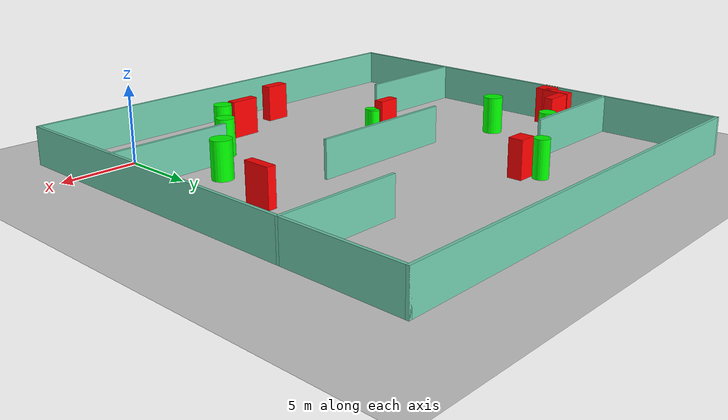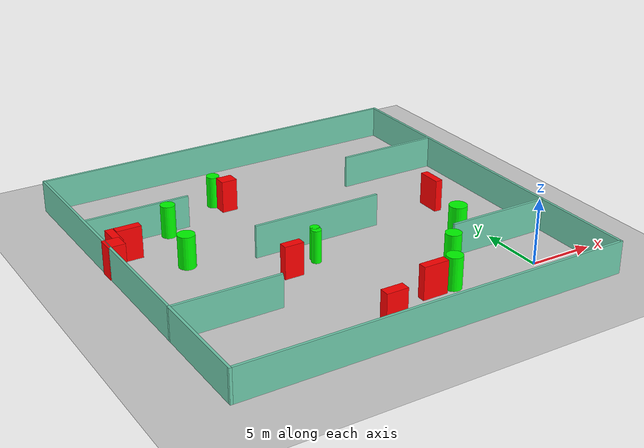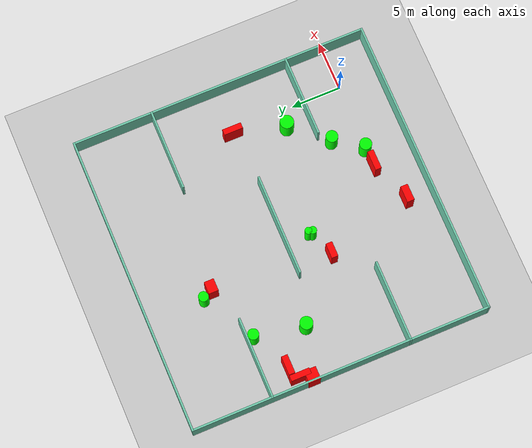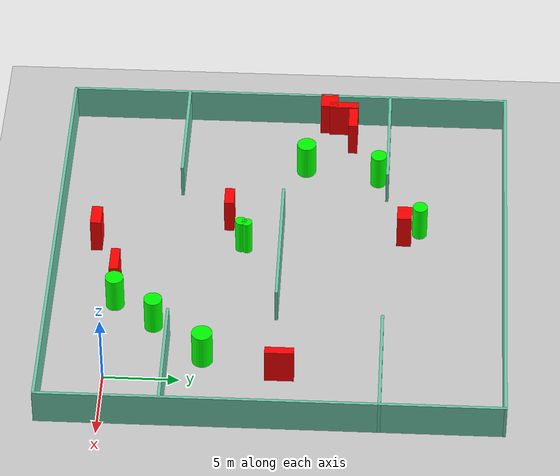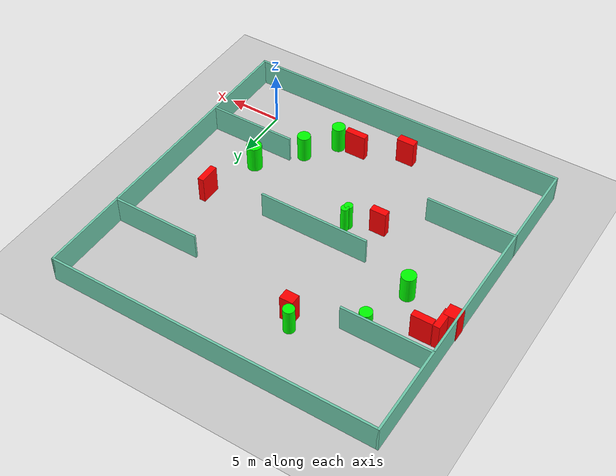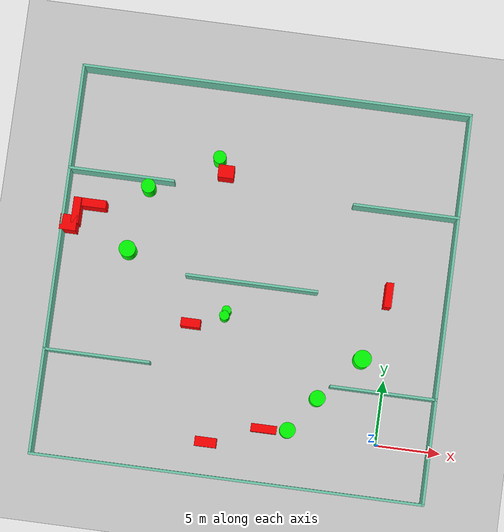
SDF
<sdf version="1.7">
 <world name="default">
  <light name="sun" type="directional">
   <pose>0 0 10 0 -0 0</pose>
   <diffuse>0.8 0.8 0.8 1</diffuse>
   <specular>0.2 0.2 0.2 1</specular>
   <attenuation>
    <range>1000</range>
    <constant>0.9</constant>
    <linear>0.01</linear>
    <quadratic>0.001</quadratic>
   </attenuation>
   <direction>-0.5 0.1 -0.9</direction>
   <spot><inner_angle>0</inner_angle><outer_angle>0</outer_angle><falloff>0</falloff></spot>
  </light>
  <model name="ground_plane">
   <static>1</static>
   <link name="link">
    <collision name="collision">
     <geometry><plane><normal>0 0 1</normal><size>100 100</size></plane></geometry>
     <surface>
      <contact><collide_bitmask>65535</collide_bitmask></contact>
      <friction><ode><mu>100</mu><mu2>50</mu2></ode></friction>
     </surface>
    </collision>
    <visual name="visual">
     <cast_shadows>0</cast_shadows>
     <geometry><plane><normal>0 0 1</normal><size>100 100</size></plane></geometry>
     <material>
      <script><uri>file://media/materials/scripts/gazebo.material</uri><name>Gazebo/Grey</name></script>
     </material>
    </visual>
   </link>
  </model>
  <gravity>0 0 -9.8</gravity>
  <magnetic_field>6e-06 2.3e-05 -4.2e-05</magnetic_field>
  <atmosphere type="adiabatic"/>
  <physics type="ode">
   <max_step_size>0.001</max_step_size>
   <real_time_factor>1</real_time_factor>
   <real_time_update_rate>1000</real_time_update_rate>
  </physics>
  <scene><ambient>0.4 0.4 0.4 1</ambient><background>0.7 0.7 0.7 1</background><shadows>1</shadows></scene>
  <spherical_coordinates>
   <surface_model>EARTH_WGS84</surface_model>
   <latitude_deg>0</latitude_deg>
   <longitude_deg>0</longitude_deg>
   <elevation>0</elevation>
   <heading_deg>0</heading_deg>
  </spherical_coordinates>
  <model name="my_base_walls">
   <link name="Wall_10">
    <collision name="Wall_10_Collision">
     <geometry><box><size>8.2 0.2 2.5</size></box></geometry>
     <pose>0 0 1.25 0 -0 0</pose>
    </collision>
    <visual name="Wall_10_Visual">
     <pose>0 0 1.25 0 -0 0</pose>
     <geometry><box><size>8.2 0.2 2.5</size></box></geometry>
     <material>
      <script><uri>file://media/materials/scripts/gazebo.material</uri><name>Gazebo/Grey</name></script>
      <ambient>0.435294 0.796078 0.67451 1</ambient>
     </material>
     <meta><layer>0</layer></meta>
    </visual>
    <pose>-11 -7 0 0 -0 0</pose>
   </link>
   <link name="Wall_12">
    <collision name="Wall_12_Collision">
     <geometry><box><size>8.2 0.2 2.5</size></box></geometry>
     <pose>0 0 1.25 0 -0 0</pose>
    </collision>
    <visual name="Wall_12_Visual">
     <pose>0 0 1.25 0 -0 0</pose>
     <geometry><box><size>8.2 0.2 2.5</size></box></geometry>
     <material>
      <script><uri>file://media/materials/scripts/gazebo.material</uri><name>Gazebo/Grey</name></script>
      <ambient>0.435294 0.796078 0.67451 1</ambient>
     </material>
     <meta><layer>0</layer></meta>
    </visual>
    <pose>-11 7 0 0 -0 0</pose>
   </link>
   <link name="Wall_14">
    <collision name="Wall_14_Collision">
     <geometry><box><size>8.2 0.2 2.5</size></box></geometry>
     <pose>0 0 1.25 0 -0 0</pose>
    </collision>
    <visual name="Wall_14_Visual">
     <pose>0 0 1.25 0 -0 0</pose>
     <geometry><box><size>8.2 0.2 2.5</size></box></geometry>
     <material>
      <script><uri>file://media/materials/scripts/gazebo.material</uri><name>Gazebo/Grey</name></script>
      <ambient>0.435294 0.796078 0.67451 1</ambient>
     </material>
     <meta><layer>0</layer></meta>
    </visual>
    <pose>11 7 0 0 -0 3.14159</pose>
   </link>
   <link name="Wall_16">
    <collision name="Wall_16_Collision">
     <geometry><box><size>10.2 0.2 2.5</size></box></geometry>
     <pose>0 0 1.25 0 -0 0</pose>
    </collision>
    <visual name="Wall_16_Visual">
     <pose>0 0 1.25 0 -0 0</pose>
     <geometry><box><size>10.2 0.2 2.5</size></box></geometry>
     <material>
      <script><uri>file://media/materials/scripts/gazebo.material</uri><name>Gazebo/Grey</name></script>
      <ambient>0.435294 0.796078 0.67451 1</ambient>
     </material>
     <meta><layer>0</layer></meta>
    </visual>
    <pose>0 0 0 0 -0 3.14159</pose>
   </link>
   <link name="Wall_2">
    <collision name="Wall_2_Collision">
     <geometry><box><size>30.2 0.2 2.5</size></box></geometry>
     <pose>0 0 1.25 0 -0 0</pose>
    </collision>
    <visual name="Wall_2_Visual">
     <pose>0 0 1.25 0 -0 0</pose>
     <geometry><box><size>30.2 0.2 2.5</size></box></geometry>
     <material>
      <script><uri>file://media/materials/scripts/gazebo.material</uri><name>Gazebo/Grey</name></script>
      <ambient>0.435294 0.796078 0.67451 1</ambient>
     </material>
     <meta><layer>0</layer></meta>
    </visual>
    <pose>0 -15 0 0 -0 3.14159</pose>
   </link>
   <link name="Wall_3">
    <collision name="Wall_3_Collision">
     <geometry><box><size>30.2 0.2 2.5</size></box></geometry>
     <pose>0 0 1.25 0 -0 0</pose>
    </collision>
    <visual name="Wall_3_Visual">
     <pose>0 0 1.25 0 -0 0</pose>
     <geometry><box><size>30.2 0.2 2.5</size></box></geometry>
     <material>
      <script><uri>file://media/materials/scripts/gazebo.material</uri><name>Gazebo/Grey</name></script>
      <ambient>0.435294 0.796078 0.67451 1</ambient>
     </material>
     <meta><layer>0</layer></meta>
    </visual>
    <pose>-15 0 0 0 -0 1.5708</pose>
   </link>
   <link name="Wall_4">
    <collision name="Wall_4_Collision">
     <geometry><box><size>30.2 0.2 2.5</size></box></geometry>
     <pose>0 0 1.25 0 -0 0</pose>
    </collision>
    <visual name="Wall_4_Visual">
     <pose>0 0 1.25 0 -0 0</pose>
     <geometry><box><size>30.2 0.2 2.5</size></box></geometry>
     <material>
      <script><uri>file://media/materials/scripts/gazebo.material</uri><name>Gazebo/Grey</name></script>
      <ambient>0.435294 0.796078 0.67451 1</ambient>
     </material>
     <meta><layer>0</layer></meta>
    </visual>
    <pose>0 15 0 0 -0 0</pose>
   </link>
   <link name="Wall_6">
    <collision name="Wall_6_Collision">
     <geometry><box><size>30.2 0.2 2.5</size></box></geometry>
     <pose>0 0 1.25 0 -0 0</pose>
    </collision>
    <visual name="Wall_6_Visual">
     <pose>0 0 1.25 0 -0 0</pose>
     <geometry><box><size>30.2 0.2 2.5</size></box></geometry>
     <material>
      <script><uri>file://media/materials/scripts/gazebo.material</uri><name>Gazebo/Grey</name></script>
      <ambient>0.435294 0.796078 0.67451 1</ambient>
     </material>
     <meta><layer>0</layer></meta>
    </visual>
    <pose>15 0 0 0 -0 1.5708</pose>
   </link>
   <link name="Wall_8">
    <collision name="Wall_8_Collision">
     <geometry><box><size>8.2 0.2 2.5</size></box></geometry>
     <pose>0 0 1.25 0 -0 0</pose>
    </collision>
    <visual name="Wall_8_Visual">
     <pose>0 0 1.25 0 -0 0</pose>
     <geometry><box><size>8.2 0.2 2.5</size></box></geometry>
     <material>
      <script><uri>file://media/materials/scripts/gazebo.material</uri><name>Gazebo/Grey</name></script>
      <ambient>0.435294 0.796078 0.67451 1</ambient>
     </material>
     <meta><layer>0</layer></meta>
    </visual>
    <pose>11 -7 0 0 -0 3.14159</pose>
   </link>
   <static>1</static>
   <pose>-11 11 0 0 -0 0</pose>
  </model>
  <model name="cylinder1">
   <static>1</static>
   <link name="link">
    <inertial>
     <mass>1</mass>
     <inertia><ixx>0.5</ixx><ixy>0</ixy><ixz>0</ixz><iyy>0.5</iyy><iyz>0</iyz><izz>1</izz></inertia>
    </inertial>
    <collision name="collision">
     <geometry><cylinder><radius>0.5004097971121233</radius><length>2.5</length></cylinder></geometry>
    </collision>
    <visual name="visual">
     <geometry><cylinder><radius>0.5004097971121233</radius><length>2.5</length></cylinder></geometry>
     <material>
      <ambient>0 1 0 1</ambient>
      <diffuse>0 1 0 1</diffuse>
      <specular>0.1 0.1 0.1 1</specular>
      <emissive>0 0 0 0</emissive>
     </material>
    </visual>
   </link>
   <pose>-14.696283538533532 20.280794465425444 1.25 0 0 0</pose>
  </model>
  <model name="cylinder2">
   <static>1</static>
   <link name="link">
    <inertial>
     <mass>1</mass>
     <inertia><ixx>0.5</ixx><ixy>0</ixy><ixz>0</ixz><iyy>0.5</iyy><iyz>0</iyz><izz>1</izz></inertia>
    </inertial>
    <collision name="collision">
     <geometry><cylinder><radius>0.5498464560483503</radius><length>2.5</length></cylinder></geometry>
    </collision>
    <visual name="visual">
     <geometry><cylinder><radius>0.5498464560483503</radius><length>2.5</length></cylinder></geometry>
     <material>
      <ambient>0 1 0 1</ambient>
      <diffuse>0 1 0 1</diffuse>
      <specular>0.1 0.1 0.1 1</specular>
      <emissive>0 0 0 0</emissive>
     </material>
    </visual>
   </link>
   <pose>-19.831765790476354 17.368916311953168 1.25 0 0 0</pose>
  </model>
  <model name="cylinder3">
   <static>1</static>
   <link name="link">
    <inertial>
     <mass>1</mass>
     <inertia><ixx>0.5</ixx><ixy>0</ixy><ixz>0</ixz><iyy>0.5</iyy><iyz>0</iyz><izz>1</izz></inertia>
    </inertial>
    <collision name="collision">
     <geometry><cylinder><radius>0.6080201490339894</radius><length>2.5</length></cylinder></geometry>
    </collision>
    <visual name="visual">
     <geometry><cylinder><radius>0.6080201490339894</radius><length>2.5</length></cylinder></geometry>
     <material>
      <ambient>0 1 0 1</ambient>
      <diffuse>0 1 0 1</diffuse>
      <specular>0.1 0.1 0.1 1</specular>
      <emissive>0 0 0 0</emissive>
     </material>
    </visual>
   </link>
   <pose>-6.861584810828994 0.26967560718890793 1.25 0 0 0</pose>
  </model>
  <model name="cylinder4">
   <static>1</static>
   <link name="link">
    <inertial>
     <mass>1</mass>
     <inertia><ixx>0.5</ixx><ixy>0</ixy><ixz>0</ixz><iyy>0.5</iyy><iyz>0</iyz><izz>1</izz></inertia>
    </inertial>
    <collision name="collision">
     <geometry><cylinder><radius>0.6460852037391813</radius><length>2.5</length></cylinder></geometry>
    </collision>
    <visual name="visual">
     <geometry><cylinder><radius>0.6460852037391813</radius><length>2.5</length></cylinder></geometry>
     <material>
      <ambient>0 1 0 1</ambient>
      <diffuse>0 1 0 1</diffuse>
      <specular>0.1 0.1 0.1 1</specular>
      <emissive>0 0 0 0</emissive>
     </material>
    </visual>
   </link>
   <pose>-20.769097517664303 12.374495764421283 1.25 0 0 0</pose>
  </model>
  <model name="cylinder5">
   <static>1</static>
   <link name="link">
    <inertial>
     <mass>1</mass>
     <inertia><ixx>0.5</ixx><ixy>0</ixy><ixz>0</ixz><iyy>0.5</iyy><iyz>0</iyz><izz>1</izz></inertia>
    </inertial>
    <collision name="collision">
     <geometry><cylinder><radius>0.6028342076372462</radius><length>2.5</length></cylinder></geometry>
    </collision>
    <visual name="visual">
     <geometry><cylinder><radius>0.6028342076372462</radius><length>2.5</length></cylinder></geometry>
     <material>
      <ambient>0 1 0 1</ambient>
      <diffuse>0 1 0 1</diffuse>
      <specular>0.1 0.1 0.1 1</specular>
      <emissive>0 0 0 0</emissive>
     </material>
    </visual>
   </link>
   <pose>-4.918032627253515 2.9634415665316105 1.25 0 0 0</pose>
  </model>
  <model name="cylinder6">
   <static>1</static>
   <link name="link">
    <inertial>
     <mass>1</mass>
     <inertia><ixx>0.5</ixx><ixy>0</ixy><ixz>0</ixz><iyy>0.5</iyy><iyz>0</iyz><izz>1</izz></inertia>
    </inertial>
    <collision name="collision">
     <geometry><cylinder><radius>0.6844340089192207</radius><length>2.5</length></cylinder></geometry>
    </collision>
    <visual name="visual">
     <geometry><cylinder><radius>0.6844340089192207</radius><length>2.5</length></cylinder></geometry>
     <material>
      <ambient>0 1 0 1</ambient>
      <diffuse>0 1 0 1</diffuse>
      <specular>0.1 0.1 0.1 1</specular>
      <emissive>0 0 0 0</emissive>
     </material>
    </visual>
   </link>
   <pose>-1.9025656671807845 6.367094459966019 1.25 0 0 0</pose>
  </model>
  <model name="cylinder7">
   <static>1</static>
   <link name="link">
    <inertial>
     <mass>1</mass>
     <inertia><ixx>0.5</ixx><ixy>0</ixy><ixz>0</ixz><iyy>0.5</iyy><iyz>0</iyz><izz>1</izz></inertia>
    </inertial>
    <collision name="collision">
     <geometry><cylinder><radius>0.35579892731063983</radius><length>2.5</length></cylinder></geometry>
    </collision>
    <visual name="visual">
     <geometry><cylinder><radius>0.35579892731063983</radius><length>2.5</length></cylinder></geometry>
     <material>
      <ambient>0 1 0 1</ambient>
      <diffuse>0 1 0 1</diffuse>
      <specular>0.1 0.1 0.1 1</specular>
      <emissive>0 0 0 0</emissive>
     </material>
    </visual>
   </link>
   <pose>-12.638390088692644 8.694328036154523 1.25 0 0 0</pose>
  </model>
  <model name="cylinder8">
   <static>1</static>
   <link name="link">
    <inertial>
     <mass>1</mass>
     <inertia><ixx>0.5</ixx><ixy>0</ixy><ixz>0</ixz><iyy>0.5</iyy><iyz>0</iyz><izz>1</izz></inertia>
    </inertial>
    <collision name="collision">
     <geometry><cylinder><radius>0.38149020214346385</radius><length>2.5</length></cylinder></geometry>
    </collision>
    <visual name="visual">
     <geometry><cylinder><radius>0.38149020214346385</radius><length>2.5</length></cylinder></geometry>
     <material>
      <ambient>0 1 0 1</ambient>
      <diffuse>0 1 0 1</diffuse>
      <specular>0.1 0.1 0.1 1</specular>
      <emissive>0 0 0 0</emissive>
     </material>
    </visual>
   </link>
   <pose>-12.755761724394164 8.290909281636614 1.25 0 0 0</pose>
  </model>
  <model name="box1">
   <static>1</static>
   <link name="link">
    <inertial>
     <mass>1</mass>
     <inertia><ixx>0.083</ixx><ixy>0</ixy><ixz>0</ixz><iyy>0.083</iyy><iyz>0</iyz><izz>0.083</izz></inertia>
    </inertial>
    <collision name="collision">
     <geometry><box><size>0.5740039866127862 1.903796711202593 2.5</size></box></geometry>
    </collision>
    <visual name="visual">
     <geometry><box><size>0.5740039866127862 1.903796711202593 2.5</size></box></geometry>
     <material>
      <ambient>1 0 0 1</ambient>
      <diffuse>1 0 0 1</diffuse>
      <specular>0.1 0.1 0.1 1</specular>
      <emissive>0 0 0 0</emissive>
     </material>
    </visual>
    <sensor name="my_contact" type="contact">
     <contact><collision>box_collision</collision><topic>__default_topic__</topic></contact>
    </sensor>
   </link>
   <pose>-0.5240671872775273 11.447717021988167 1.25 0 0 0</pose>
  </model>
  <model name="box2">
   <static>1</static>
   <link name="link">
    <inertial>
     <mass>1</mass>
     <inertia><ixx>0.083</ixx><ixy>0</ixy><ixz>0</ixz><iyy>0.083</iyy><iyz>0</iyz><izz>0.083</izz></inertia>
    </inertial>
    <collision name="collision">
     <geometry><box><size>1.497256739745953 0.6586135885737522 2.5</size></box></geometry>
    </collision>
    <visual name="visual">
     <geometry><box><size>1.497256739745953 0.6586135885737522 2.5</size></box></geometry>
     <material>
      <ambient>1 0 0 1</ambient>
      <diffuse>1 0 0 1</diffuse>
      <specular>0.1 0.1 0.1 1</specular>
      <emissive>0 0 0 0</emissive>
     </material>
    </visual>
    <sensor name="my_contact" type="contact">
     <contact><collision>box_collision</collision><topic>__default_topic__</topic></contact>
    </sensor>
   </link>
   <pose>-15.227379396663393 7.392001126265301 1.25 0 0 0</pose>
  </model>
  <model name="box3">
   <static>1</static>
   <link name="link">
    <inertial>
     <mass>1</mass>
     <inertia><ixx>0.083</ixx><ixy>0</ixy><ixz>0</ixz><iyy>0.083</iyy><iyz>0</iyz><izz>0.083</izz></inertia>
    </inertial>
    <collision name="collision">
     <geometry><box><size>1.9735363009274176 0.6187077162787388 2.5</size></box></geometry>
    </collision>
    <visual name="visual">
     <geometry><box><size>1.9735363009274176 0.6187077162787388 2.5</size></box></geometry>
     <material>
      <ambient>1 0 0 1</ambient>
      <diffuse>1 0 0 1</diffuse>
      <specular>0.1 0.1 0.1 1</specular>
      <emissive>0 0 0 0</emissive>
     </material>
    </visual>
    <sensor name="my_contact" type="contact">
     <contact><collision>box_collision</collision><topic>__default_topic__</topic></contact>
    </sensor>
   </link>
   <pose>-8.65961846148706 0.14492189545543344 1.25 0 0 0</pose>
  </model>
  <model name="box4">
   <static>1</static>
   <link name="link">
    <inertial>
     <mass>1</mass>
     <inertia><ixx>0.083</ixx><ixy>0</ixy><ixz>0</ixz><iyy>0.083</iyy><iyz>0</iyz><izz>0.083</izz></inertia>
    </inertial>
    <collision name="collision">
     <geometry><box><size>0.5791641527709581 2.0058857915061896 2.5</size></box></geometry>
    </collision>
    <visual name="visual">
     <geometry><box><size>0.5791641527709581 2.0058857915061896 2.5</size></box></geometry>
     <material>
      <ambient>1 0 0 1</ambient>
      <diffuse>1 0 0 1</diffuse>
      <specular>0.1 0.1 0.1 1</specular>
      <emissive>0 0 0 0</emissive>
     </material>
    </visual>
    <sensor name="my_contact" type="contact">
     <contact><collision>box_collision</collision><topic>__default_topic__</topic></contact>
    </sensor>
   </link>
   <pose>-25.052420001522133 14.811003924440051 1.25 0 0 0</pose>
  </model>
  <model name="box5">
   <static>1</static>
   <link name="link">
    <inertial>
     <mass>1</mass>
     <inertia><ixx>0.083</ixx><ixy>0</ixy><ixz>0</ixz><iyy>0.083</iyy><iyz>0</iyz><izz>0.083</izz></inertia>
    </inertial>
    <collision name="collision">
     <geometry><box><size>1.6533354390823956 0.7376260401209171 2.5</size></box></geometry>
    </collision>
    <visual name="visual">
     <geometry><box><size>1.6533354390823956 0.7376260401209171 2.5</size></box></geometry>
     <material>
      <ambient>1 0 0 1</ambient>
      <diffuse>1 0 0 1</diffuse>
      <specular>0.1 0.1 0.1 1</specular>
      <emissive>0 0 0 0</emissive>
     </material>
    </visual>
    <sensor name="my_contact" type="contact">
     <contact><collision>box_collision</collision><topic>__default_topic__</topic></contact>
    </sensor>
   </link>
   <pose>-12.907926796108143 -1.4255642685038707 1.25 0 0 0</pose>
  </model>
  <model name="box6">
   <static>1</static>
   <link name="link">
    <inertial>
     <mass>1</mass>
     <inertia><ixx>0.083</ixx><ixy>0</ixy><ixz>0</ixz><iyy>0.083</iyy><iyz>0</iyz><izz>0.083</izz></inertia>
    </inertial>
    <collision name="collision">
     <geometry><box><size>1.2745408818785253 1.195851625193415 2.5</size></box></geometry>
    </collision>
    <visual name="visual">
     <geometry><box><size>1.2745408818785253 1.195851625193415 2.5</size></box></geometry>
     <material>
      <ambient>1 0 0 1</ambient>
      <diffuse>1 0 0 1</diffuse>
      <specular>0.1 0.1 0.1 1</specular>
      <emissive>0 0 0 0</emissive>
     </material>
    </visual>
    <sensor name="my_contact" type="contact">
     <contact><collision>box_collision</collision><topic>__default_topic__</topic></contact>
    </sensor>
   </link>
   <pose>-25.51581688610258 13.797394395497768 1.25 0 0 0</pose>
  </model>
  <model name="box7">
   <static>1</static>
   <link name="link">
    <inertial>
     <mass>1</mass>
     <inertia><ixx>0.083</ixx><ixy>0</ixy><ixz>0</ixz><iyy>0.083</iyy><iyz>0</iyz><izz>0.083</izz></inertia>
    </inertial>
    <collision name="collision">
     <geometry><box><size>1.866729015538544 0.6256074082566264 2.5</size></box></geometry>
    </collision>
    <visual name="visual">
     <geometry><box><size>1.866729015538544 0.6256074082566264 2.5</size></box></geometry>
     <material>
      <ambient>1 0 0 1</ambient>
      <diffuse>1 0 0 1</diffuse>
      <specular>0.1 0.1 0.1 1</specular>
      <emissive>0 0 0 0</emissive>
     </material>
    </visual>
    <sensor name="my_contact" type="contact">
     <contact><collision>box_collision</collision><topic>__default_topic__</topic></contact>
    </sensor>
   </link>
   <pose>-23.76120196676793 15.489864739780835 1.25 0 0 0</pose>
  </model>
  <model name="box8">
   <static>1</static>
   <link name="link">
    <inertial>
     <mass>1</mass>
     <inertia><ixx>0.083</ixx><ixy>0</ixy><ixz>0</ixz><iyy>0.083</iyy><iyz>0</iyz><izz>0.083</izz></inertia>
    </inertial>
    <collision name="collision">
     <geometry><box><size>1.2283991776387586 0.979129691450201 2.5</size></box></geometry>
    </collision>
    <visual name="visual">
     <geometry><box><size>1.2283991776387586 0.979129691450201 2.5</size></box></geometry>
     <material>
      <ambient>1 0 0 1</ambient>
      <diffuse>1 0 0 1</diffuse>
      <specular>0.1 0.1 0.1 1</specular>
      <emissive>0 0 0 0</emissive>
     </material>
    </visual>
    <sensor name="my_contact" type="contact">
     <contact><collision>box_collision</collision><topic>__default_topic__</topic></contact>
    </sensor>
   </link>
   <pose>-14.062127842920837 19.239340811699115 1.25 0 0 0</pose>
  </model>
 </world>
</sdf>
